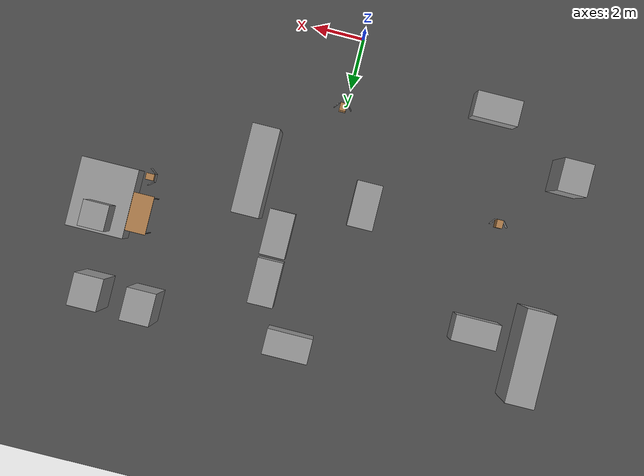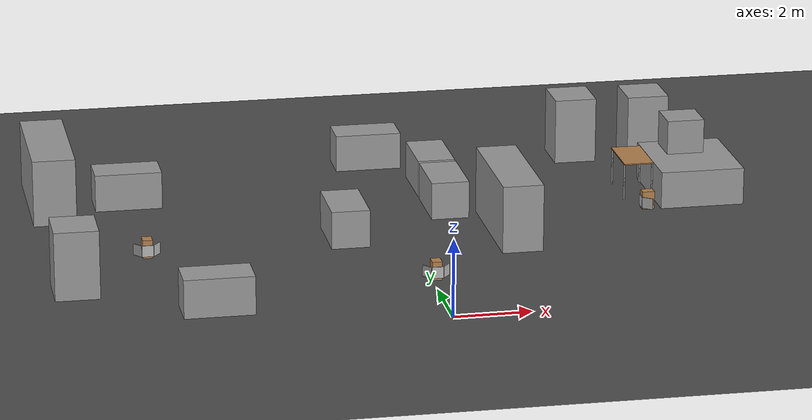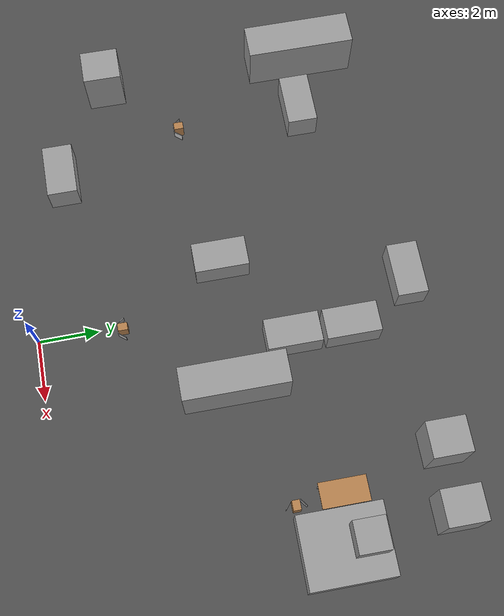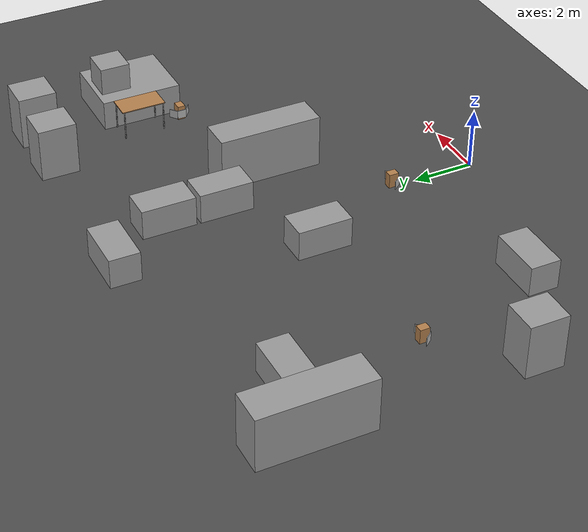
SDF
<sdf version="1.6">
 <world name="default">
  <model name="ground_plane">
   <static>1</static>
   <link name="link">
    <collision name="collision">
     <geometry><plane><normal>0 0 1</normal><size>100 100</size></plane></geometry>
     <surface><friction><ode><mu>100</mu><mu2>50</mu2></ode></friction></surface>
    </collision>
    <visual name="visual">
     <cast_shadows>0</cast_shadows>
     <geometry><plane><normal>0 0 1</normal><size>100 100</size></plane></geometry>
     <material>
      <script><uri>file://media/materials/scripts/gazebo.material</uri><name>Gazebo/DarkGrey</name></script>
     </material>
    </visual>
   </link>
  </model>
  <model name="unit_box_clone_0">
   <pose>5.73018 12.0225 0.892855 0 0 -0.002519</pose>
   <link name="link">
    <inertial>
     <mass>1</mass>
     <inertia>
      <ixx>0.166667</ixx>
      <ixy>0</ixy>
      <ixz>0</ixz>
      <iyy>0.166667</iyy>
      <iyz>0</iyz>
      <izz>0.166667</izz>
     </inertia>
    </inertial>
    <collision name="collision"><geometry><box><size>1.13282 1.25934 1.78571</size></box></geometry></collision>
    <visual name="visual">
     <geometry><box><size>1.13282 1.25934 1.78571</size></box></geometry>
     <material>
      <script><name>Gazebo/Grey</name><uri>file://media/materials/scripts/gazebo.material</uri></script>
     </material>
    </visual>
   </link>
  </model>
  <model name="unit_box_clone_1">
   <pose>7.76064 11.9532 0.892855 -0 -0 -0.00242</pose>
   <link name="link">
    <inertial>
     <mass>1</mass>
     <inertia>
      <ixx>0.166667</ixx>
      <ixy>0</ixy>
      <ixz>0</ixz>
      <iyy>0.166667</iyy>
      <iyz>0</iyz>
      <izz>0.166667</izz>
     </inertia>
    </inertial>
    <collision name="collision"><geometry><box><size>1.13282 1.25934 1.78571</size></box></geometry></collision>
    <visual name="visual">
     <geometry><box><size>1.13282 1.25934 1.78571</size></box></geometry>
     <material>
      <script><name>Gazebo/Grey</name><uri>file://media/materials/scripts/gazebo.material</uri></script>
     </material>
    </visual>
   </link>
  </model>
  <model name="unit_box_1_clone">
   <pose>-5.61874 1.50263 0.499995 -2e-06 6e-06 1.5708</pose>
   <link name="link">
    <inertial>
     <mass>1</mass>
     <inertia>
      <ixx>0.166667</ixx>
      <ixy>0</ixy>
      <ixz>0</ixz>
      <iyy>0.166667</iyy>
      <iyz>0</iyz>
      <izz>0.166667</izz>
     </inertia>
    </inertial>
    <collision name="collision"><geometry><box><size>1 1.78009 1</size></box></geometry></collision>
    <visual name="visual">
     <geometry><box><size>1 1.78009 1</size></box></geometry>
     <material>
      <script><name>Gazebo/Grey</name><uri>file://media/materials/scripts/gazebo.material</uri></script>
     </material>
    </visual>
   </link>
  </model>
  <model name="unit_box_clone_5">
   <pose>-8.91772 3.42618 0.892851 6e-06 -0 -0.00583</pose>
   <link name="link">
    <inertial>
     <mass>1</mass>
     <inertia>
      <ixx>0.166667</ixx>
      <ixy>0</ixy>
      <ixz>0</ixz>
      <iyy>0.166667</iyy>
      <iyz>0</iyz>
      <izz>0.166667</izz>
     </inertia>
    </inertial>
    <collision name="collision"><geometry><box><size>1.13282 1.25934 1.78571</size></box></geometry></collision>
    <visual name="visual">
     <geometry><box><size>1.13282 1.25934 1.78571</size></box></geometry>
     <material>
      <script><name>Gazebo/Grey</name><uri>file://media/materials/scripts/gazebo.material</uri></script>
     </material>
    </visual>
   </link>
  </model>
  <model name="unit_box_1_clone_clone">
   <pose>-6.86867 9.99177 0.5 0 -0 1.57082</pose>
   <link name="link">
    <inertial>
     <mass>1</mass>
     <inertia>
      <ixx>0.166667</ixx>
      <ixy>0</ixy>
      <ixz>0</ixz>
      <iyy>0.166667</iyy>
      <iyz>0</iyz>
      <izz>0.166667</izz>
     </inertia>
    </inertial>
    <collision name="collision"><geometry><box><size>1 1.78009 1</size></box></geometry></collision>
    <visual name="visual">
     <geometry><box><size>1 1.78009 1</size></box></geometry>
     <material>
      <script><name>Gazebo/Grey</name><uri>file://media/materials/scripts/gazebo.material</uri></script>
     </material>
    </visual>
   </link>
  </model>
  <model name="unit_box_clone_2_clone">
   <pose>-8.91755 10.3807 0.892637 -0.00012 -0 1.2e-05</pose>
   <link name="link">
    <inertial>
     <mass>1</mass>
     <inertia>
      <ixx>0.166667</ixx>
      <ixy>0</ixy>
      <ixz>0</ixz>
      <iyy>0.166667</iyy>
      <iyz>0</iyz>
      <izz>0.166667</izz>
     </inertia>
    </inertial>
    <collision name="collision"><geometry><box><size>1.13282 3.62061 1.78571</size></box></geometry></collision>
    <visual name="visual">
     <geometry><box><size>1.13282 3.62061 1.78571</size></box></geometry>
     <material>
      <script><name>Gazebo/Grey</name><uri>file://media/materials/scripts/gazebo.material</uri></script>
     </material>
    </visual>
   </link>
  </model>
  <model name="unit_box_1_clone_clone_0">
   <pose>-0.008701 12.2398 0.5 0 -0 1.56888</pose>
   <link name="link">
    <inertial>
     <mass>1</mass>
     <inertia>
      <ixx>0.166667</ixx>
      <ixy>0</ixy>
      <ixz>0</ixz>
      <iyy>0.166667</iyy>
      <iyz>0</iyz>
      <izz>0.166667</izz>
     </inertia>
    </inertial>
    <collision name="collision"><geometry><box><size>1 1.78009 1</size></box></geometry></collision>
    <visual name="visual">
     <geometry><box><size>1 1.78009 1</size></box></geometry>
     <material>
      <script><name>Gazebo/Grey</name><uri>file://media/materials/scripts/gazebo.material</uri></script>
     </material>
    </visual>
   </link>
  </model>
  <model name="unit_box_1_clone_clone_1">
   <pose>-1.59397 6.32067 0.5 0 -0 -3.14157</pose>
   <link name="link">
    <inertial>
     <mass>1</mass>
     <inertia>
      <ixx>0.166667</ixx>
      <ixy>0</ixy>
      <ixz>0</ixz>
      <iyy>0.166667</iyy>
      <iyz>0</iyz>
      <izz>0.166667</izz>
     </inertia>
    </inertial>
    <collision name="collision"><geometry><box><size>1 1.78009 1</size></box></geometry></collision>
    <visual name="visual">
     <geometry><box><size>1 1.78009 1</size></box></geometry>
     <material>
      <script><name>Gazebo/Grey</name><uri>file://media/materials/scripts/gazebo.material</uri></script>
     </material>
    </visual>
   </link>
  </model>
  <model name="unit_box_1_clone_clone_2">
   <pose>1.39031 8.16896 0.5 0 -0 3.14142</pose>
   <link name="link">
    <inertial>
     <mass>1</mass>
     <inertia>
      <ixx>0.166667</ixx>
      <ixy>0</ixy>
      <ixz>0</ixz>
      <iyy>0.166667</iyy>
      <iyz>0</iyz>
      <izz>0.166667</izz>
     </inertia>
    </inertial>
    <collision name="collision"><geometry><box><size>1 1.78009 1</size></box></geometry></collision>
    <visual name="visual">
     <geometry><box><size>1 1.78009 1</size></box></geometry>
     <material>
      <script><name>Gazebo/Grey</name><uri>file://media/materials/scripts/gazebo.material</uri></script>
     </material>
    </visual>
   </link>
  </model>
  <model name="unit_box_1_clone_clone_2_clone">
   <pose>1.39025 10.0864 0.499995 -0 9e-06 3.14131</pose>
   <link name="link">
    <inertial>
     <mass>1</mass>
     <inertia>
      <ixx>0.166667</ixx>
      <ixy>0</ixy>
      <ixz>0</ixz>
      <iyy>0.166667</iyy>
      <iyz>0</iyz>
      <izz>0.166667</izz>
     </inertia>
    </inertial>
    <collision name="collision"><geometry><box><size>1 1.78009 1</size></box></geometry></collision>
    <visual name="visual">
     <geometry><box><size>1 1.78009 1</size></box></geometry>
     <material>
      <script><name>Gazebo/Grey</name><uri>file://media/materials/scripts/gazebo.material</uri></script>
     </material>
    </visual>
   </link>
  </model>
  <model name="unit_box_1_clone_clone_2_clone_0">
   <link name="link">
    <inertial>
     <mass>1</mass>
     <inertia>
      <ixx>0.166667</ixx>
      <ixy>0</ixy>
      <ixz>0</ixz>
      <iyy>0.166667</iyy>
      <iyz>0</iyz>
      <izz>0.166667</izz>
     </inertia>
    </inertial>
    <visual name="visual">
     <geometry><box><size>2.24701 2.69579 1</size></box></geometry>
     <material>
      <script><name>Gazebo/Grey</name><uri>file://media/materials/scripts/gazebo.material</uri></script>
      <emissive>0 0 0 1</emissive>
     </material>
    </visual>
    <collision name="collision">
     <geometry><box><size>2.24701 2.69579 1</size></box></geometry>
     <surface>
      <friction>
       <ode><mu>1</mu><mu2>1</mu2><fdir1>0 0 0</fdir1><slip1>0</slip1><slip2>0</slip2></ode>
       <torsional>
        <coefficient>1</coefficient>
        <patch_radius>0</patch_radius>
        <surface_radius>0</surface_radius>
        <use_patch_radius>1</use_patch_radius>
        <ode><slip>0</slip></ode>
       </torsional>
      </friction>
      <bounce><restitution_coefficient>0</restitution_coefficient><threshold>1e+06</threshold></bounce>
      <contact>
       <collide_without_contact>0</collide_without_contact>
       <collide_without_contact_bitmask>1</collide_without_contact_bitmask>
       <collide_bitmask>1</collide_bitmask>
       <ode>
        <soft_cfm>0</soft_cfm>
        <soft_erp>0.2</soft_erp>
        <kp>1e+13</kp>
        <kd>1</kd>
        <max_vel>0.01</max_vel>
        <min_depth>0</min_depth>
       </ode>
       <bullet>
        <split_impulse>1</split_impulse>
        <split_impulse_penetration_threshold>-0.01</split_impulse_penetration_threshold>
        <soft_cfm>0</soft_cfm>
        <soft_erp>0.2</soft_erp>
        <kp>1e+13</kp>
        <kd>1</kd>
       </bullet>
      </contact>
     </surface>
    </collision>
   </link>
   <link name="link_0">
    <inertial>
     <mass>1</mass>
     <inertia>
      <ixx>0.166667</ixx>
      <ixy>0</ixy>
      <ixz>0</ixz>
      <iyy>0.166667</iyy>
      <iyz>0</iyz>
      <izz>0.166667</izz>
     </inertia>
    </inertial>
    <pose>0.087398 -0.681979 0.921931 0 -2.9e-05 3.1398</pose>
    <visual name="visual">
     <geometry><box><size>1 1 1</size></box></geometry>
     <material>
      <lighting>1</lighting>
      <script><uri>file://media/materials/scripts/gazebo.material</uri><name>Gazebo/Grey</name></script>
      <emissive>0 0 0 1</emissive>
     </material>
    </visual>
    <collision name="collision">
     <geometry><box><size>1 1 1</size></box></geometry>
     <surface>
      <friction>
       <ode><mu>1</mu><mu2>1</mu2><fdir1>0 0 0</fdir1><slip1>0</slip1><slip2>0</slip2></ode>
       <torsional>
        <coefficient>1</coefficient>
        <patch_radius>0</patch_radius>
        <surface_radius>0</surface_radius>
        <use_patch_radius>1</use_patch_radius>
        <ode><slip>0</slip></ode>
       </torsional>
      </friction>
      <bounce><restitution_coefficient>0</restitution_coefficient><threshold>1e+06</threshold></bounce>
      <contact>
       <collide_without_contact>0</collide_without_contact>
       <collide_without_contact_bitmask>1</collide_without_contact_bitmask>
       <collide_bitmask>1</collide_bitmask>
       <ode>
        <soft_cfm>0</soft_cfm>
        <soft_erp>0.2</soft_erp>
        <kp>1e+13</kp>
        <kd>1</kd>
        <max_vel>0.01</max_vel>
        <min_depth>0</min_depth>
       </ode>
       <bullet>
        <split_impulse>1</split_impulse>
        <split_impulse_penetration_threshold>-0.01</split_impulse_penetration_threshold>
        <soft_cfm>0</soft_cfm>
        <soft_erp>0.2</soft_erp>
        <kp>1e+13</kp>
        <kd>1</kd>
       </bullet>
      </contact>
     </surface>
    </collision>
   </link>
   <joint name="link_JOINT_0" type="fixed">
    <parent>link</parent>
    <child>link_0</child>
    <physics>
     <ode><limit><cfm>0</cfm><erp>0.2</erp></limit><suspension><cfm>0</cfm><erp>0.2</erp></suspension></ode>
    </physics>
   </joint>
   <static>0</static>
   <pose>8.1952 8.42159 0.499996 0 -3e-06 3.13985</pose>
  </model>
  <model name="Support_box_wood">
   <link name="link">
    <inertial>
     <mass>0.0406949</mass>
     <inertia>
      <ixx>0.00114102</ixx>
      <ixy>0</ixy>
      <ixz>0</ixz>
      <iyy>0.00102768</iyy>
      <iyz>0</iyz>
      <izz>0.000581951</izz>
     </inertia>
    </inertial>
    <pose>0.062754 0.860403 -0.243846 0 -0 0</pose>
    <visual name="visual">
     <geometry><box><size>0.252854 0.320175 0.483682</size></box></geometry>
     <material>
      <script><name>Gazebo/Wood</name><uri>file://media/materials/scripts/gazebo.material</uri></script>
      <shader type="vertex"><normal_map>__default__</normal_map></shader>
      <ambient>0.3 0.3 0.3 1</ambient>
      <diffuse>0.7 0.7 0.7 1</diffuse>
      <specular>0.01 0.01 0.01 1</specular>
      <emissive>0 0 0 1</emissive>
     </material>
    </visual>
    <visual name="ModelPreview_4::link::visual_1">
     <geometry><box><size>0.252854 0.320175 0.483682</size></box></geometry>
     <material>
      <script><name>Gazebo/Wood</name><uri>file://media/materials/scripts/gazebo.material</uri></script>
      <shader type="vertex"><normal_map>__default__</normal_map></shader>
      <ambient>0.3 0.3 0.3 1</ambient>
      <diffuse>0.7 0.7 0.7 1</diffuse>
      <specular>0.01 0.01 0.01 1</specular>
      <emissive>0 0 0 1</emissive>
     </material>
    </visual>
    <collision name="collision">
     <geometry><box><size>0.262854 0.320175 0.483683</size></box></geometry>
     <surface>
      <friction>
       <ode><mu>1</mu><mu2>1</mu2><fdir1>0 0 0</fdir1><slip1>0</slip1><slip2>0</slip2></ode>
       <torsional>
        <coefficient>1</coefficient>
        <patch_radius>0</patch_radius>
        <surface_radius>0</surface_radius>
        <use_patch_radius>1</use_patch_radius>
        <ode><slip>0</slip></ode>
       </torsional>
      </friction>
      <bounce><restitution_coefficient>0</restitution_coefficient><threshold>1e+06</threshold></bounce>
      <contact>
       <collide_without_contact>0</collide_without_contact>
       <collide_without_contact_bitmask>1</collide_without_contact_bitmask>
       <collide_bitmask>1</collide_bitmask>
       <ode>
        <soft_cfm>0</soft_cfm>
        <soft_erp>0.2</soft_erp>
        <kp>1e+13</kp>
        <kd>1</kd>
        <max_vel>0.01</max_vel>
        <min_depth>0</min_depth>
       </ode>
       <bullet>
        <split_impulse>1</split_impulse>
        <split_impulse_penetration_threshold>-0.01</split_impulse_penetration_threshold>
        <soft_cfm>0</soft_cfm>
        <soft_erp>0.2</soft_erp>
        <kp>1e+13</kp>
        <kd>1</kd>
       </bullet>
      </contact>
     </surface>
    </collision>
   </link>
   <static>0</static>
   <pose>0.062709 1.94294 0.485697 -1.4e-05 -0 0.000215</pose>
  </model>
  <model name="Support_box_wood_clone">
   <link name="link">
    <inertial>
     <mass>0.0406949</mass>
     <inertia>
      <ixx>0.00114102</ixx>
      <ixy>0</ixy>
      <ixz>0</ixz>
      <iyy>0.00102768</iyy>
      <iyz>0</iyz>
      <izz>0.000581951</izz>
     </inertia>
    </inertial>
    <pose>0.062754 0.860403 -0.243846 0 -0 0</pose>
    <visual name="visual">
     <geometry><box><size>0.252854 0.320175 0.483682</size></box></geometry>
     <material>
      <script><name>Gazebo/Wood</name><uri>file://media/materials/scripts/gazebo.material</uri></script>
      <shader type="vertex"><normal_map>__default__</normal_map></shader>
      <ambient>0.3 0.3 0.3 1</ambient>
      <diffuse>0.7 0.7 0.7 1</diffuse>
      <specular>0.01 0.01 0.01 1</specular>
      <emissive>0 0 0 1</emissive>
     </material>
    </visual>
    <visual name="ModelPreview_4::link::visual_1">
     <geometry><box><size>0.252854 0.320175 0.483682</size></box></geometry>
     <material>
      <script><name>Gazebo/Wood</name><uri>file://media/materials/scripts/gazebo.material</uri></script>
      <shader type="vertex"><normal_map>__default__</normal_map></shader>
      <ambient>0.3 0.3 0.3 1</ambient>
      <diffuse>0.7 0.7 0.7 1</diffuse>
      <specular>0.01 0.01 0.01 1</specular>
      <emissive>0 0 0 1</emissive>
     </material>
    </visual>
    <collision name="collision">
     <geometry><box><size>0.262854 0.320175 0.483683</size></box></geometry>
     <surface>
      <friction>
       <ode><mu>1</mu><mu2>1</mu2><fdir1>0 0 0</fdir1><slip1>0</slip1><slip2>0</slip2></ode>
       <torsional>
        <coefficient>1</coefficient>
        <patch_radius>0</patch_radius>
        <surface_radius>0</surface_radius>
        <use_patch_radius>1</use_patch_radius>
        <ode><slip>0</slip></ode>
       </torsional>
      </friction>
      <bounce><restitution_coefficient>0</restitution_coefficient><threshold>1e+06</threshold></bounce>
      <contact>
       <collide_without_contact>0</collide_without_contact>
       <collide_without_contact_bitmask>1</collide_without_contact_bitmask>
       <collide_bitmask>1</collide_bitmask>
       <ode>
        <soft_cfm>0</soft_cfm>
        <soft_erp>0.2</soft_erp>
        <kp>1e+13</kp>
        <kd>1</kd>
        <max_vel>0.01</max_vel>
        <min_depth>0</min_depth>
       </ode>
       <bullet>
        <split_impulse>1</split_impulse>
        <split_impulse_penetration_threshold>-0.01</split_impulse_penetration_threshold>
        <soft_cfm>0</soft_cfm>
        <soft_erp>0.2</soft_erp>
        <kp>1e+13</kp>
        <kd>1</kd>
       </bullet>
      </contact>
     </surface>
    </collision>
   </link>
   <static>0</static>
   <pose>-6.90157 4.8801 0.485687 0 -0 0.000178</pose>
  </model>
  <model name="Support_box_wood_clone_0">
   <link name="link">
    <inertial>
     <mass>0.0406949</mass>
     <inertia>
      <ixx>0.00114102</ixx>
      <ixy>0</ixy>
      <ixz>0</ixz>
      <iyy>0.00102768</iyy>
      <iyz>0</iyz>
      <izz>0.000581951</izz>
     </inertia>
    </inertial>
    <pose>0.062754 0.860403 -0.243846 0 -0 0</pose>
    <visual name="visual">
     <geometry><box><size>0.252854 0.320175 0.483682</size></box></geometry>
     <material>
      <script><name>Gazebo/Wood</name><uri>file://media/materials/scripts/gazebo.material</uri></script>
      <shader type="vertex"><normal_map>__default__</normal_map></shader>
      <ambient>0.3 0.3 0.3 1</ambient>
      <diffuse>0.7 0.7 0.7 1</diffuse>
      <specular>0.01 0.01 0.01 1</specular>
      <emissive>0 0 0 1</emissive>
     </material>
    </visual>
    <visual name="ModelPreview_4::link::visual_1">
     <geometry><box><size>0.252854 0.320175 0.483682</size></box></geometry>
     <material>
      <script><name>Gazebo/Wood</name><uri>file://media/materials/scripts/gazebo.material</uri></script>
      <shader type="vertex"><normal_map>__default__</normal_map></shader>
      <ambient>0.3 0.3 0.3 1</ambient>
      <diffuse>0.7 0.7 0.7 1</diffuse>
      <specular>0.01 0.01 0.01 1</specular>
      <emissive>0 0 0 1</emissive>
     </material>
    </visual>
    <collision name="collision">
     <geometry><box><size>0.262854 0.320175 0.483683</size></box></geometry>
     <surface>
      <friction>
       <ode><mu>1</mu><mu2>1</mu2><fdir1>0 0 0</fdir1><slip1>0</slip1><slip2>0</slip2></ode>
       <torsional>
        <coefficient>1</coefficient>
        <patch_radius>0</patch_radius>
        <surface_radius>0</surface_radius>
        <use_patch_radius>1</use_patch_radius>
        <ode><slip>0</slip></ode>
       </torsional>
      </friction>
      <bounce><restitution_coefficient>0</restitution_coefficient><threshold>1e+06</threshold></bounce>
      <contact>
       <collide_without_contact>0</collide_without_contact>
       <collide_without_contact_bitmask>1</collide_without_contact_bitmask>
       <collide_bitmask>1</collide_bitmask>
       <ode>
        <soft_cfm>0</soft_cfm>
        <soft_erp>0.2</soft_erp>
        <kp>1e+13</kp>
        <kd>1</kd>
        <max_vel>0.01</max_vel>
        <min_depth>0</min_depth>
       </ode>
       <bullet>
        <split_impulse>1</split_impulse>
        <split_impulse_penetration_threshold>-0.01</split_impulse_penetration_threshold>
        <soft_cfm>0</soft_cfm>
        <soft_erp>0.2</soft_erp>
        <kp>1e+13</kp>
        <kd>1</kd>
       </bullet>
      </contact>
     </surface>
    </collision>
   </link>
   <static>0</static>
   <pose>7.5842 7.17566 0.485699 -1.7e-05 1e-05 1.5841</pose>
  </model>
  <model name="table">
   <static>1</static>
   <link name="link">
    <collision name="surface">
     <pose>0 0 1 0 -0 0</pose>
     <geometry><box><size>1.5 0.8 0.03</size></box></geometry>
     <surface><friction><ode><mu>0.6</mu><mu2>0.6</mu2></ode></friction></surface>
    </collision>
    <visual name="visual1">
     <pose>0 0 1 0 -0 0</pose>
     <geometry><box><size>1.5 0.8 0.03</size></box></geometry>
     <material>
      <script><uri>file://media/materials/scripts/gazebo.material</uri><name>Gazebo/Wood</name></script>
     </material>
    </visual>
    <collision name="front_left_leg">
     <pose>0.68 0.38 0.5 0 -0 0</pose>
     <geometry><cylinder><radius>0.02</radius><length>1</length></cylinder></geometry>
    </collision>
    <visual name="front_left_leg">
     <pose>0.68 0.38 0.5 0 -0 0</pose>
     <geometry><cylinder><radius>0.02</radius><length>1</length></cylinder></geometry>
     <material>
      <script><uri>file://media/materials/scripts/gazebo.material</uri><name>Gazebo/Grey</name></script>
     </material>
    </visual>
    <collision name="front_right_leg">
     <pose>0.68 -0.38 0.5 0 -0 0</pose>
     <geometry><cylinder><radius>0.02</radius><length>1</length></cylinder></geometry>
    </collision>
    <visual name="front_right_leg">
     <pose>0.68 -0.38 0.5 0 -0 0</pose>
     <geometry><cylinder><radius>0.02</radius><length>1</length></cylinder></geometry>
     <material>
      <script><uri>file://media/materials/scripts/gazebo.material</uri><name>Gazebo/Grey</name></script>
     </material>
    </visual>
    <collision name="back_right_leg">
     <pose>-0.68 -0.38 0.5 0 -0 0</pose>
     <geometry><cylinder><radius>0.02</radius><length>1</length></cylinder></geometry>
    </collision>
    <visual name="back_right_leg">
     <pose>-0.68 -0.38 0.5 0 -0 0</pose>
     <geometry><cylinder><radius>0.02</radius><length>1</length></cylinder></geometry>
     <material>
      <script><uri>file://media/materials/scripts/gazebo.material</uri><name>Gazebo/Grey</name></script>
     </material>
    </visual>
    <collision name="back_left_leg">
     <pose>-0.68 0.38 0.5 0 -0 0</pose>
     <geometry><cylinder><radius>0.02</radius><length>1</length></cylinder></geometry>
    </collision>
    <visual name="back_left_leg">
     <pose>-0.68 0.38 0.5 0 -0 0</pose>
     <geometry><cylinder><radius>0.02</radius><length>1</length></cylinder></geometry>
     <material>
      <script><uri>file://media/materials/scripts/gazebo.material</uri><name>Gazebo/Grey</name></script>
     </material>
    </visual>
   </link>
   <pose>6.65683 8.67676 0 0 -0 1.57</pose>
  </model>
  <model name="unit_box_clone_2">
   <link name="link">
    <inertial>
     <mass>21.0967</mass>
     <inertia><ixx>26.1298</ixx><ixy>0</ixy><ixz>0</ixz><iyy>7.6026</iyy><iyz>0</iyz><izz>22.5204</izz></inertia>
    </inertial>
    <visual name="visual">
     <geometry><box><size>1.06568 3.41674 1.78571</size></box></geometry>
     <material>
      <script><name>Gazebo/Grey</name><uri>file://media/materials/scripts/gazebo.material</uri></script>
     </material>
    </visual>
    <collision name="collision">
     <geometry><box><size>1.06568 3.41674 1.78571</size></box></geometry>
     <surface>
      <friction>
       <ode><mu>1</mu><mu2>1</mu2><fdir1>0 0 0</fdir1><slip1>0</slip1><slip2>0</slip2></ode>
       <torsional>
        <coefficient>1</coefficient>
        <patch_radius>0</patch_radius>
        <surface_radius>0</surface_radius>
        <use_patch_radius>1</use_patch_radius>
        <ode><slip>0</slip></ode>
       </torsional>
      </friction>
      <bounce><restitution_coefficient>0</restitution_coefficient><threshold>1e+06</threshold></bounce>
      <contact>
       <collide_without_contact>0</collide_without_contact>
       <collide_without_contact_bitmask>1</collide_without_contact_bitmask>
       <collide_bitmask>1</collide_bitmask>
       <ode>
        <soft_cfm>0</soft_cfm>
        <soft_erp>0.2</soft_erp>
        <kp>1e+13</kp>
        <kd>1</kd>
        <max_vel>0.01</max_vel>
        <min_depth>0</min_depth>
       </ode>
       <bullet>
        <split_impulse>1</split_impulse>
        <split_impulse_penetration_threshold>-0.01</split_impulse_penetration_threshold>
        <soft_cfm>0</soft_cfm>
        <soft_erp>0.2</soft_erp>
        <kp>1e+13</kp>
        <kd>1</kd>
       </bullet>
      </contact>
     </surface>
    </collision>
   </link>
   <static>0</static>
   <pose>2.70205 6.04245 0.892855 0 -0 -8e-05</pose>
  </model>
  <model name="Aruco tag101">
   <static>1</static>
   <link name="robot_link">
    <visual name="body_visual">
     <geometry><box><size>0.3 0.3 0.02</size></box></geometry>
     <material>
      <script><uri>model://tag_101/materials/scripts/tag.material</uri><name>aruco_tag_101</name></script>
     </material>
    </visual>
   </link>
   <pose>-6.84008 5.56993 0.20086 1.57 -0 0</pose>
  </model>
  <model name="Aruco tag101_clone">
   <static>1</static>
   <link name="robot_link">
    <visual name="body_visual">
     <geometry><box><size>0.3 0.3 0.02</size></box></geometry>
     <material>
      <script><uri>model://tag_101/materials/scripts/tag.material</uri><name>aruco_tag_101</name></script>
     </material>
    </visual>
   </link>
   <pose>-7.0878 5.69354 0.2 1.57 -0 -0.909999</pose>
  </model>
  <model name="Aruco tag101_clone_0">
   <static>1</static>
   <link name="robot_link">
    <visual name="body_visual">
     <geometry><box><size>0.3 0.3 0.02</size></box></geometry>
     <material>
      <script><uri>model://tag_101/materials/scripts/tag.material</uri><name>aruco_tag_101</name></script>
     </material>
    </visual>
   </link>
   <pose>-6.59374 5.69242 0.199805 1.57 0 0.91</pose>
  </model>
  <model name="Aruco tag102">
   <static>1</static>
   <link name="robot_link">
    <visual name="body_visual">
     <geometry><box><size>0.3 0.3 0.02</size></box></geometry>
     <material>
      <script><uri>model://tag_102/materials/scripts/tag.material</uri><name>aruco_tag_102</name></script>
     </material>
    </visual>
   </link>
   <pose>0.129996 2.63067 0.209189 1.57 -0 0</pose>
  </model>
  <model name="Aruco tag102_clone">
   <static>1</static>
   <link name="robot_link">
    <visual name="body_visual">
     <geometry><box><size>0.3 0.3 0.02</size></box></geometry>
     <material>
      <script><uri>model://tag_102/materials/scripts/tag.material</uri><name>aruco_tag_102</name></script>
     </material>
    </visual>
   </link>
   <pose>-0.116994 2.74954 0.207903 1.57 -0 -0.91</pose>
  </model>
  <model name="Aruco tag102_clone_0">
   <static>1</static>
   <link name="robot_link">
    <visual name="body_visual">
     <geometry><box><size>0.3 0.3 0.02</size></box></geometry>
     <material>
      <script><uri>model://tag_102/materials/scripts/tag.material</uri><name>aruco_tag_102</name></script>
     </material>
    </visual>
   </link>
   <pose>0.378439 2.75148 0.206866 1.57 0 0.91</pose>
  </model>
  <model name="Aruco tag103">
   <static>1</static>
   <link name="robot_link">
    <visual name="body_visual">
     <geometry><box><size>0.3 0.3 0.02</size></box></geometry>
     <material>
      <script><uri>model://tag_103/materials/scripts/tag.material</uri><name>aruco_tag_103</name></script>
     </material>
    </visual>
   </link>
   <pose>6.54823 7.23044 0.201576 0 1.57 0</pose>
  </model>
  <model name="Aruco tag103_clone">
   <static>1</static>
   <link name="robot_link">
    <visual name="body_visual">
     <geometry><box><size>0.3 0.3 0.02</size></box></geometry>
     <material>
      <script><uri>model://tag_103/materials/scripts/tag.material</uri><name>aruco_tag_103</name></script>
     </material>
    </visual>
   </link>
   <pose>6.67156 6.98735 0.199771 3.2e-05 1.57 0.910032</pose>
  </model>
  <model name="Aruco tag103_clone_0">
   <static>1</static>
   <link name="robot_link">
    <visual name="body_visual">
     <geometry><box><size>0.3 0.3 0.02</size></box></geometry>
     <material>
      <script><uri>model://tag_103/materials/scripts/tag.material</uri><name>aruco_tag_103</name></script>
     </material>
    </visual>
   </link>
   <pose>6.66364 7.47282 0.201857 -3.2e-05 1.57 -0.910032</pose>
  </model>
 </world>
</sdf>
